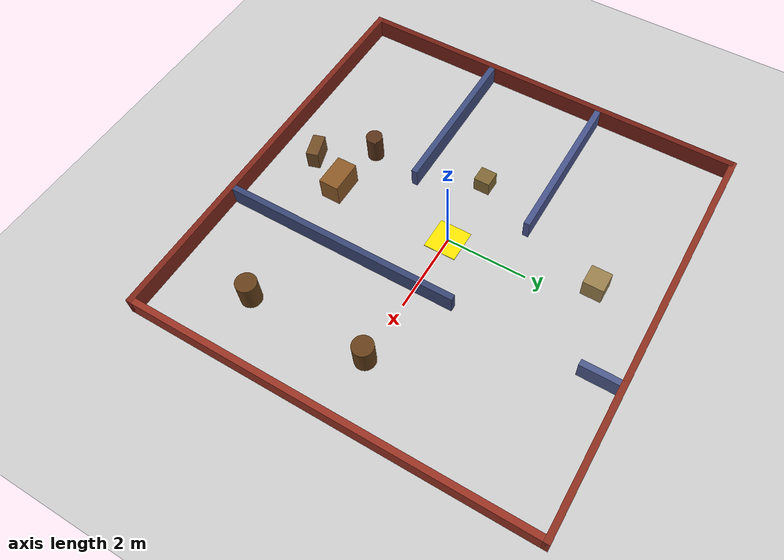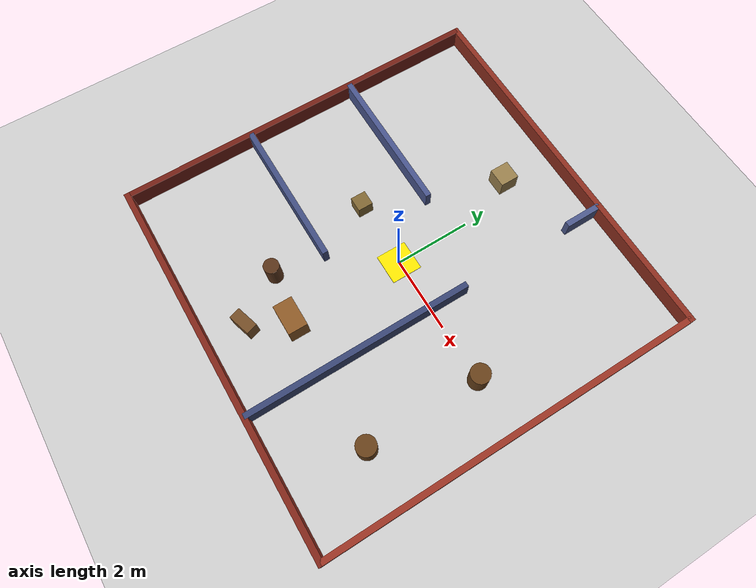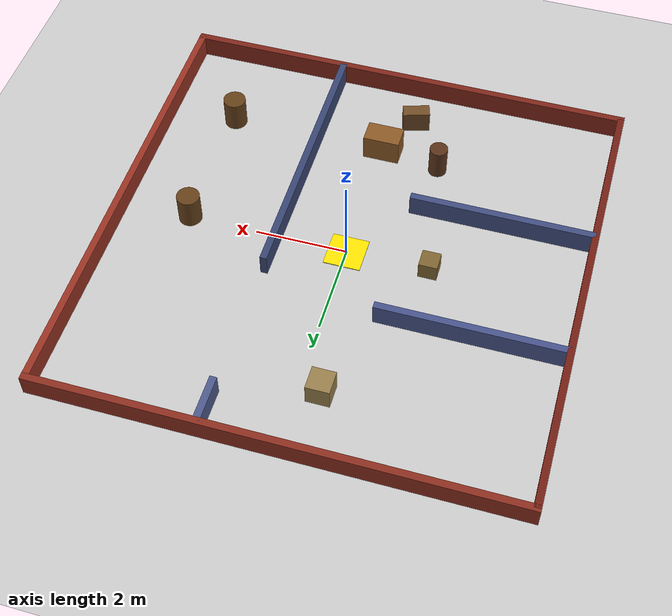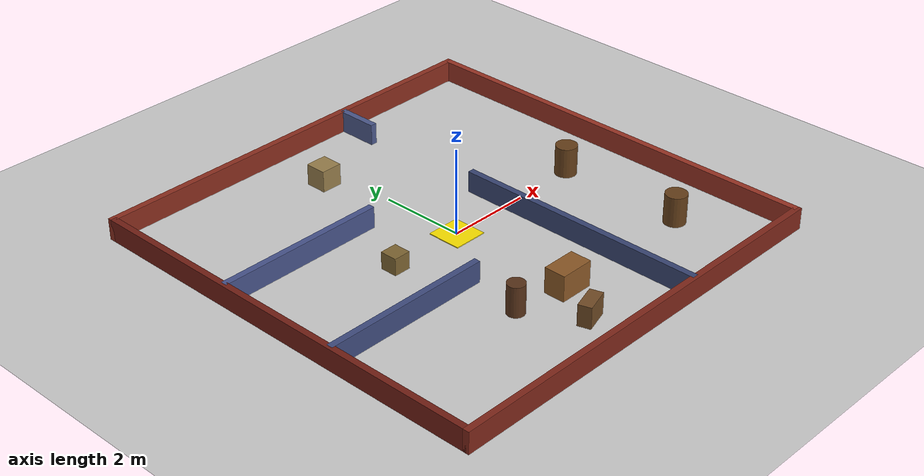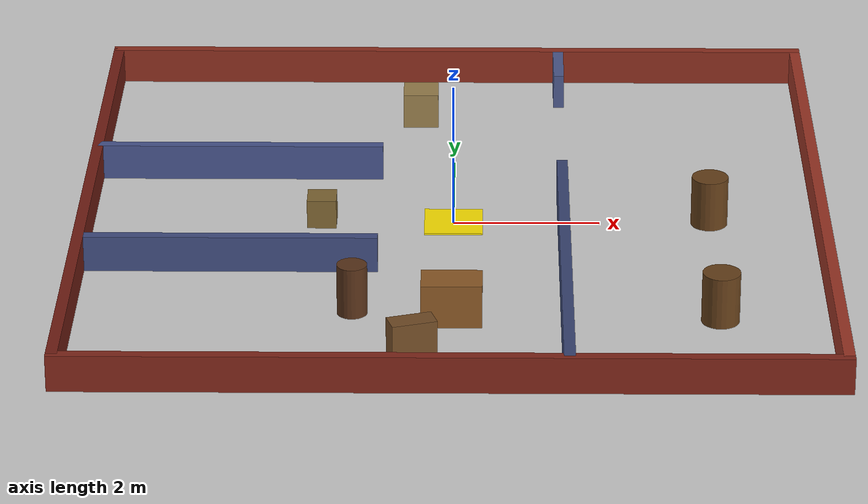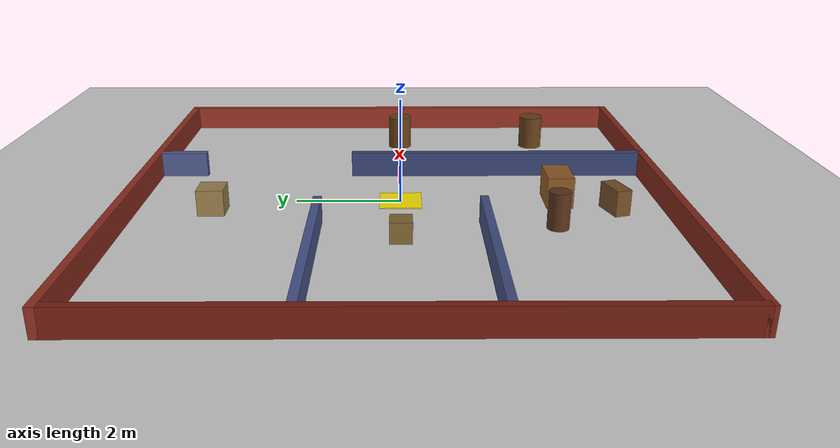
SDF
<?xml version="1.0" ?>
<!--
  object_fetching.world — Walled room with corridors, obstacles, 3 pickup zones
-->
<sdf version="1.6">
  <world name="object_fetching_world">

    <!-- Simple directional light instead of sun model (faster load) -->
    <light name="sun" type="directional">
      <cast_shadows>false</cast_shadows>
      <pose>0 0 10 0 0 0</pose>
      <diffuse>0.8 0.8 0.8 1</diffuse>
      <specular>0.1 0.1 0.1 1</specular>
      <direction>-0.5 0.5 -1</direction>
    </light>
    <include><uri>model://ground_plane</uri></include>

    <!-- ════════════ OUTER WALLS (10 m × 10 m room) ════════════ -->

    <model name="wall_north"><static>true</static>
      <pose>0 5.0 0.25 0 0 0</pose>
      <link name="link">
        <collision name="c"><geometry><box><size>10.15 0.15 0.5</size></box></geometry></collision>
        <visual name="v"><geometry><box><size>10.15 0.15 0.5</size></box></geometry>
          <material><ambient>0.55 0.18 0.12 1</ambient><diffuse>0.55 0.18 0.12 1</diffuse></material></visual>
      </link>
    </model>

    <model name="wall_south"><static>true</static>
      <pose>0 -5.0 0.25 0 0 0</pose>
      <link name="link">
        <collision name="c"><geometry><box><size>10.15 0.15 0.5</size></box></geometry></collision>
        <visual name="v"><geometry><box><size>10.15 0.15 0.5</size></box></geometry>
          <material><ambient>0.50 0.15 0.10 1</ambient><diffuse>0.50 0.15 0.10 1</diffuse></material></visual>
      </link>
    </model>

    <model name="wall_west"><static>true</static>
      <pose>-5.0 0 0.25 0 0 0</pose>
      <link name="link">
        <collision name="c"><geometry><box><size>0.15 10.0 0.5</size></box></geometry></collision>
        <visual name="v"><geometry><box><size>0.15 10.0 0.5</size></box></geometry>
          <material><ambient>0.45 0.12 0.08 1</ambient><diffuse>0.45 0.12 0.08 1</diffuse></material></visual>
      </link>
    </model>

    <model name="wall_east"><static>true</static>
      <pose>5.0 0 0.25 0 0 0</pose>
      <link name="link">
        <collision name="c"><geometry><box><size>0.15 10.0 0.5</size></box></geometry></collision>
        <visual name="v"><geometry><box><size>0.15 10.0 0.5</size></box></geometry>
          <material><ambient>0.60 0.20 0.14 1</ambient><diffuse>0.60 0.20 0.14 1</diffuse></material></visual>
      </link>
    </model>

    <!-- ════════════ INTERIOR PARTITION WALLS ════════════ -->

    <!-- Horizontal wall: creates Room A (lower-left) — gap at x=-1 for doorway -->
    <model name="partition_lower"><static>true</static>
      <pose>-3.0 -1.5 0.25 0 0 0</pose>
      <link name="link">
        <collision name="c"><geometry><box><size>4.0 0.15 0.5</size></box></geometry></collision>
        <visual name="v"><geometry><box><size>4.0 0.15 0.5</size></box></geometry>
          <material><ambient>0.25 0.30 0.50 1</ambient><diffuse>0.25 0.30 0.50 1</diffuse></material></visual>
      </link>
    </model>

    <!-- Horizontal wall: creates Room B (upper-left) — gap at x=-1 for doorway -->
    <model name="partition_upper"><static>true</static>
      <pose>-3.0 1.5 0.25 0 0 0</pose>
      <link name="link">
        <collision name="c"><geometry><box><size>4.0 0.15 0.5</size></box></geometry></collision>
        <visual name="v"><geometry><box><size>4.0 0.15 0.5</size></box></geometry>
          <material><ambient>0.28 0.33 0.55 1</ambient><diffuse>0.28 0.33 0.55 1</diffuse></material></visual>
      </link>
    </model>

    <!-- Vertical wall: corridor divider, y = -5 to y = +1  (3 m doorway gap to y = +4) -->
    <model name="partition_right_lower"><static>true</static>
      <pose>1.5 -2.0 0.25 0 0 0</pose>
      <link name="link">
        <collision name="c"><geometry><box><size>0.15 6.0 0.5</size></box></geometry></collision>
        <visual name="v"><geometry><box><size>0.15 6.0 0.5</size></box></geometry>
          <material><ambient>0.22 0.27 0.45 1</ambient><diffuse>0.22 0.27 0.45 1</diffuse></material></visual>
      </link>
    </model>

    <!-- Short wall above doorway to Zone Gamma room -->
    <model name="partition_right_upper"><static>true</static>
      <pose>1.5 4.5 0.25 0 0 0</pose>
      <link name="link">
        <collision name="c"><geometry><box><size>0.15 1.0 0.5</size></box></geometry></collision>
        <visual name="v"><geometry><box><size>0.15 1.0 0.5</size></box></geometry>
          <material><ambient>0.30 0.35 0.55 1</ambient><diffuse>0.30 0.35 0.55 1</diffuse></material></visual>
      </link>
    </model>

    <!-- ════════════ OBSTACLES (furniture / barrels / crates) ════════════ -->

    <model name="obstacle_table"><static>true</static>
      <pose>0.0 -3.0 0.3 0 0 0</pose>
      <link name="link">
        <collision name="c"><geometry><box><size>0.8 0.5 0.6</size></box></geometry></collision>
        <visual name="v"><geometry><box><size>0.8 0.5 0.6</size></box></geometry>
          <material><ambient>0.55 0.35 0.15 1</ambient><diffuse>0.55 0.35 0.15 1</diffuse></material></visual>
      </link>
    </model>

    <model name="obstacle_barrel_1"><static>true</static>
      <pose>3.5 0.0 0.35 0 0 0</pose>
      <link name="link">
        <collision name="c"><geometry><cylinder><radius>0.25</radius><length>0.7</length></cylinder></geometry></collision>
        <visual name="v"><geometry><cylinder><radius>0.25</radius><length>0.7</length></cylinder></geometry>
          <material><ambient>0.4 0.25 0.1 1</ambient><diffuse>0.4 0.25 0.1 1</diffuse></material></visual>
      </link>
    </model>

    <model name="obstacle_crate_1"><static>true</static>
      <pose>-0.5 3.5 0.25 0 0 0</pose>
      <link name="link">
        <collision name="c"><geometry><box><size>0.5 0.5 0.5</size></box></geometry></collision>
        <visual name="v"><geometry><box><size>0.5 0.5 0.5</size></box></geometry>
          <material><ambient>0.6 0.5 0.3 1</ambient><diffuse>0.6 0.5 0.3 1</diffuse></material></visual>
      </link>
    </model>

    <model name="obstacle_barrel_2"><static>true</static>
      <pose>3.5 -3.0 0.35 0 0 0</pose>
      <link name="link">
        <collision name="c"><geometry><cylinder><radius>0.25</radius><length>0.7</length></cylinder></geometry></collision>
        <visual name="v"><geometry><cylinder><radius>0.25</radius><length>0.7</length></cylinder></geometry>
          <material><ambient>0.4 0.25 0.1 1</ambient><diffuse>0.4 0.25 0.1 1</diffuse></material></visual>
      </link>
    </model>

    <model name="obstacle_crate_2"><static>true</static>
      <pose>-1.8 0.0 0.2 0 0 0</pose>
      <link name="link">
        <collision name="c"><geometry><box><size>0.4 0.4 0.4</size></box></geometry></collision>
        <visual name="v"><geometry><box><size>0.4 0.4 0.4</size></box></geometry>
          <material><ambient>0.5 0.4 0.2 1</ambient><diffuse>0.5 0.4 0.2 1</diffuse></material></visual>
      </link>
    </model>

    <model name="obstacle_box_south"><static>true</static>
      <pose>-0.5 -4.0 0.25 0 0 0.3</pose>
      <link name="link">
        <collision name="c"><geometry><box><size>0.6 0.3 0.5</size></box></geometry></collision>
        <visual name="v"><geometry><box><size>0.6 0.3 0.5</size></box></geometry>
          <material><ambient>0.45 0.3 0.15 1</ambient><diffuse>0.45 0.3 0.15 1</diffuse></material></visual>
      </link>
    </model>

    <model name="obstacle_barrel_3"><static>true</static>
      <pose>-1.3 -2.8 0.35 0 0 0</pose>
      <link name="link">
        <collision name="c"><geometry><cylinder><radius>0.2</radius><length>0.7</length></cylinder></geometry></collision>
        <visual name="v"><geometry><cylinder><radius>0.2</radius><length>0.7</length></cylinder></geometry>
          <material><ambient>0.35 0.2 0.1 1</ambient><diffuse>0.35 0.2 0.1 1</diffuse></material></visual>
      </link>
    </model>

    <!-- ════════════ HOME BASE (Yellow) — Drop-off at (0, 0) ════════════ -->
    <model name="home_base"><static>true</static>
      <pose>0 0 0.01 0 0 0</pose>
      <link name="link">
        <visual name="v"><geometry><box><size>0.8 0.8 0.02</size></box></geometry>
          <material><ambient>1.0 0.9 0.0 1</ambient><diffuse>1.0 0.9 0.0 1</diffuse></material></visual>
      </link>
    </model>

    <!-- Pickup zone objects are spawned dynamically by pickup_site_node -->

    <!-- ════════════ PHYSICS ════════════ -->
    <!-- Lower update rate to reduce CPU load so gzclient can render -->
    <physics type="ode">
      <real_time_update_rate>200.0</real_time_update_rate>
      <max_step_size>0.005</max_step_size>
      <real_time_factor>1</real_time_factor>
    </physics>

    <!-- Scene: disable shadows to help with software rendering -->
    <scene>
      <ambient>0.6 0.6 0.6 1.0</ambient>
      <background>0.7 0.7 0.7 1.0</background>
      <shadows>false</shadows>
      <grid>false</grid>
    </scene>

  </world>
</sdf>
